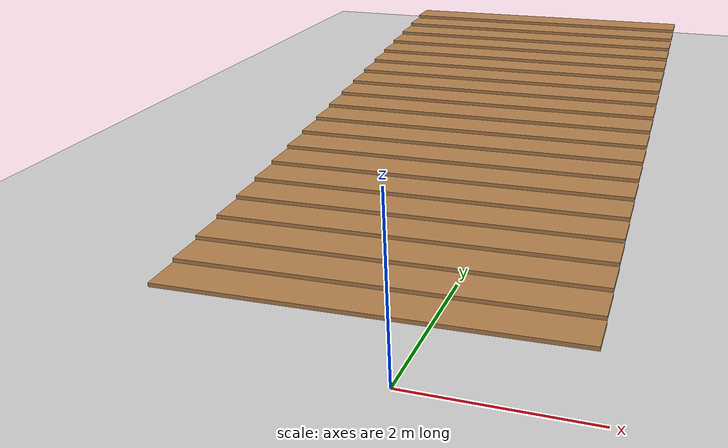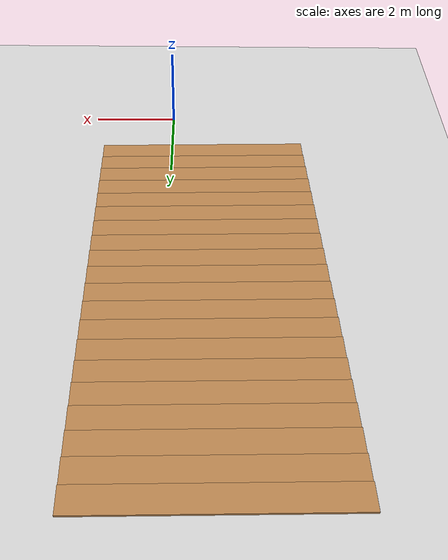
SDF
<sdf version="1.7">
 <world name="default">
  <light name="sun" type="directional">
   <pose>0 0 10 0 -0 0</pose>
   <diffuse>0.8 0.8 0.8 1</diffuse>
   <specular>0.2 0.2 0.2 1</specular>
   <attenuation>
    <range>1000</range>
    <constant>0.9</constant>
    <linear>0.01</linear>
    <quadratic>0.001</quadratic>
   </attenuation>
   <direction>-0.5 0.1 -0.9</direction>
   <spot><inner_angle>0</inner_angle><outer_angle>0</outer_angle><falloff>0</falloff></spot>
  </light>
  <model name="ground_plane">
   <static>1</static>
   <link name="link">
    <collision name="collision">
     <geometry><plane><normal>0 0 1</normal><size>100 100</size></plane></geometry>
     <surface>
      <contact><collide_bitmask>65535</collide_bitmask></contact>
      <friction><ode><mu>100</mu><mu2>50</mu2></ode></friction>
     </surface>
    </collision>
    <visual name="visual">
     <cast_shadows>0</cast_shadows>
     <geometry><plane><normal>0 0 1</normal><size>100 100</size></plane></geometry>
     <material>
      <script><uri>file://media/materials/scripts/gazebo.material</uri><name>Gazebo/Grey</name></script>
     </material>
    </visual>
   </link>
  </model>
  <gravity>0 0 -9.8</gravity>
  <magnetic_field>6e-06 2.3e-05 -4.2e-05</magnetic_field>
  <atmosphere type="adiabatic"/>
  <physics type="ode">
   <max_step_size>0.001</max_step_size>
   <real_time_factor>1</real_time_factor>
   <real_time_update_rate>1000</real_time_update_rate>
  </physics>
  <scene><ambient>0.4 0.4 0.4 1</ambient><background>0.7 0.7 0.7 1</background><shadows>1</shadows></scene>
  <spherical_coordinates>
   <surface_model>EARTH_WGS84</surface_model>
   <latitude_deg>0</latitude_deg>
   <longitude_deg>0</longitude_deg>
   <elevation>0</elevation>
   <heading_deg>0</heading_deg>
  </spherical_coordinates>
  <model name="Untitled">
   <pose>-0.886192 6.06718 0 0 0 -3.11701</pose>
   <link name="Stairs_4">
    <visual name="Stairs_4_Visual_0">
     <pose>0 4.75 0.025 0 -0 0</pose>
     <geometry><box><size>5 0.5 0.05</size></box></geometry>
     <material>
      <script><uri>file://media/materials/scripts/gazebo.material</uri><name>Gazebo/Wood</name></script>
      <ambient>1 1 1 1</ambient>
     </material>
     <meta><layer>0</layer></meta>
    </visual>
    <collision name="Stairs_4_Collision_0">
     <geometry><box><size>5 0.5 0.05</size></box></geometry>
     <pose>0 4.75 0.025 0 -0 0</pose>
    </collision>
    <visual name="Stairs_4_Visual_1">
     <pose>0 4.25 0.075 0 -0 0</pose>
     <geometry><box><size>5 0.5 0.05</size></box></geometry>
     <material>
      <script><uri>file://media/materials/scripts/gazebo.material</uri><name>Gazebo/Wood</name></script>
      <ambient>1 1 1 1</ambient>
     </material>
     <meta><layer>0</layer></meta>
    </visual>
    <collision name="Stairs_4_Collision_1">
     <geometry><box><size>5 0.5 0.05</size></box></geometry>
     <pose>0 4.25 0.075 0 -0 0</pose>
    </collision>
    <visual name="Stairs_4_Visual_2">
     <pose>0 3.75 0.125 0 -0 0</pose>
     <geometry><box><size>5 0.5 0.05</size></box></geometry>
     <material>
      <script><uri>file://media/materials/scripts/gazebo.material</uri><name>Gazebo/Wood</name></script>
      <ambient>1 1 1 1</ambient>
     </material>
     <meta><layer>0</layer></meta>
    </visual>
    <collision name="Stairs_4_Collision_2">
     <geometry><box><size>5 0.5 0.05</size></box></geometry>
     <pose>0 3.75 0.125 0 -0 0</pose>
    </collision>
    <visual name="Stairs_4_Visual_3">
     <pose>0 3.25 0.175 0 -0 0</pose>
     <geometry><box><size>5 0.5 0.05</size></box></geometry>
     <material>
      <script><uri>file://media/materials/scripts/gazebo.material</uri><name>Gazebo/Wood</name></script>
      <ambient>1 1 1 1</ambient>
     </material>
     <meta><layer>0</layer></meta>
    </visual>
    <collision name="Stairs_4_Collision_3">
     <geometry><box><size>5 0.5 0.05</size></box></geometry>
     <pose>0 3.25 0.175 0 -0 0</pose>
    </collision>
    <visual name="Stairs_4_Visual_4">
     <pose>0 2.75 0.225 0 -0 0</pose>
     <geometry><box><size>5 0.5 0.05</size></box></geometry>
     <material>
      <script><uri>file://media/materials/scripts/gazebo.material</uri><name>Gazebo/Wood</name></script>
      <ambient>1 1 1 1</ambient>
     </material>
     <meta><layer>0</layer></meta>
    </visual>
    <collision name="Stairs_4_Collision_4">
     <geometry><box><size>5 0.5 0.05</size></box></geometry>
     <pose>0 2.75 0.225 0 -0 0</pose>
    </collision>
    <visual name="Stairs_4_Visual_5">
     <pose>0 2.25 0.275 0 -0 0</pose>
     <geometry><box><size>5 0.5 0.05</size></box></geometry>
     <material>
      <script><uri>file://media/materials/scripts/gazebo.material</uri><name>Gazebo/Wood</name></script>
      <ambient>1 1 1 1</ambient>
     </material>
     <meta><layer>0</layer></meta>
    </visual>
    <collision name="Stairs_4_Collision_5">
     <geometry><box><size>5 0.5 0.05</size></box></geometry>
     <pose>0 2.25 0.275 0 -0 0</pose>
    </collision>
    <visual name="Stairs_4_Visual_6">
     <pose>0 1.75 0.325 0 -0 0</pose>
     <geometry><box><size>5 0.5 0.05</size></box></geometry>
     <material>
      <script><uri>file://media/materials/scripts/gazebo.material</uri><name>Gazebo/Wood</name></script>
      <ambient>1 1 1 1</ambient>
     </material>
     <meta><layer>0</layer></meta>
    </visual>
    <collision name="Stairs_4_Collision_6">
     <geometry><box><size>5 0.5 0.05</size></box></geometry>
     <pose>0 1.75 0.325 0 -0 0</pose>
    </collision>
    <visual name="Stairs_4_Visual_7">
     <pose>0 1.25 0.375 0 -0 0</pose>
     <geometry><box><size>5 0.5 0.05</size></box></geometry>
     <material>
      <script><uri>file://media/materials/scripts/gazebo.material</uri><name>Gazebo/Wood</name></script>
      <ambient>1 1 1 1</ambient>
     </material>
     <meta><layer>0</layer></meta>
    </visual>
    <collision name="Stairs_4_Collision_7">
     <geometry><box><size>5 0.5 0.05</size></box></geometry>
     <pose>0 1.25 0.375 0 -0 0</pose>
    </collision>
    <visual name="Stairs_4_Visual_8">
     <pose>0 0.75 0.425 0 -0 0</pose>
     <geometry><box><size>5 0.5 0.05</size></box></geometry>
     <material>
      <script><uri>file://media/materials/scripts/gazebo.material</uri><name>Gazebo/Wood</name></script>
      <ambient>1 1 1 1</ambient>
     </material>
     <meta><layer>0</layer></meta>
    </visual>
    <collision name="Stairs_4_Collision_8">
     <geometry><box><size>5 0.5 0.05</size></box></geometry>
     <pose>0 0.75 0.425 0 -0 0</pose>
    </collision>
    <visual name="Stairs_4_Visual_9">
     <pose>0 0.25 0.475 0 -0 0</pose>
     <geometry><box><size>5 0.5 0.05</size></box></geometry>
     <material>
      <script><uri>file://media/materials/scripts/gazebo.material</uri><name>Gazebo/Wood</name></script>
      <ambient>1 1 1 1</ambient>
     </material>
     <meta><layer>0</layer></meta>
    </visual>
    <collision name="Stairs_4_Collision_9">
     <geometry><box><size>5 0.5 0.05</size></box></geometry>
     <pose>0 0.25 0.475 0 -0 0</pose>
    </collision>
    <visual name="Stairs_4_Visual_10">
     <pose>0 -0.25 0.525 0 -0 0</pose>
     <geometry><box><size>5 0.5 0.05</size></box></geometry>
     <material>
      <script><uri>file://media/materials/scripts/gazebo.material</uri><name>Gazebo/Wood</name></script>
      <ambient>1 1 1 1</ambient>
     </material>
     <meta><layer>0</layer></meta>
    </visual>
    <collision name="Stairs_4_Collision_10">
     <geometry><box><size>5 0.5 0.05</size></box></geometry>
     <pose>0 -0.25 0.525 0 -0 0</pose>
    </collision>
    <visual name="Stairs_4_Visual_11">
     <pose>0 -0.75 0.575 0 -0 0</pose>
     <geometry><box><size>5 0.5 0.05</size></box></geometry>
     <material>
      <script><uri>file://media/materials/scripts/gazebo.material</uri><name>Gazebo/Wood</name></script>
      <ambient>1 1 1 1</ambient>
     </material>
     <meta><layer>0</layer></meta>
    </visual>
    <collision name="Stairs_4_Collision_11">
     <geometry><box><size>5 0.5 0.05</size></box></geometry>
     <pose>0 -0.75 0.575 0 -0 0</pose>
    </collision>
    <visual name="Stairs_4_Visual_12">
     <pose>0 -1.25 0.625 0 -0 0</pose>
     <geometry><box><size>5 0.5 0.05</size></box></geometry>
     <material>
      <script><uri>file://media/materials/scripts/gazebo.material</uri><name>Gazebo/Wood</name></script>
      <ambient>1 1 1 1</ambient>
     </material>
     <meta><layer>0</layer></meta>
    </visual>
    <collision name="Stairs_4_Collision_12">
     <geometry><box><size>5 0.5 0.05</size></box></geometry>
     <pose>0 -1.25 0.625 0 -0 0</pose>
    </collision>
    <visual name="Stairs_4_Visual_13">
     <pose>0 -1.75 0.675 0 -0 0</pose>
     <geometry><box><size>5 0.5 0.05</size></box></geometry>
     <material>
      <script><uri>file://media/materials/scripts/gazebo.material</uri><name>Gazebo/Wood</name></script>
      <ambient>1 1 1 1</ambient>
     </material>
     <meta><layer>0</layer></meta>
    </visual>
    <collision name="Stairs_4_Collision_13">
     <geometry><box><size>5 0.5 0.05</size></box></geometry>
     <pose>0 -1.75 0.675 0 -0 0</pose>
    </collision>
    <visual name="Stairs_4_Visual_14">
     <pose>0 -2.25 0.725 0 -0 0</pose>
     <geometry><box><size>5 0.5 0.05</size></box></geometry>
     <material>
      <script><uri>file://media/materials/scripts/gazebo.material</uri><name>Gazebo/Wood</name></script>
      <ambient>1 1 1 1</ambient>
     </material>
     <meta><layer>0</layer></meta>
    </visual>
    <collision name="Stairs_4_Collision_14">
     <geometry><box><size>5 0.5 0.05</size></box></geometry>
     <pose>0 -2.25 0.725 0 -0 0</pose>
    </collision>
    <visual name="Stairs_4_Visual_15">
     <pose>0 -2.75 0.775 0 -0 0</pose>
     <geometry><box><size>5 0.5 0.05</size></box></geometry>
     <material>
      <script><uri>file://media/materials/scripts/gazebo.material</uri><name>Gazebo/Wood</name></script>
      <ambient>1 1 1 1</ambient>
     </material>
     <meta><layer>0</layer></meta>
    </visual>
    <collision name="Stairs_4_Collision_15">
     <geometry><box><size>5 0.5 0.05</size></box></geometry>
     <pose>0 -2.75 0.775 0 -0 0</pose>
    </collision>
    <visual name="Stairs_4_Visual_16">
     <pose>0 -3.25 0.825 0 -0 0</pose>
     <geometry><box><size>5 0.5 0.05</size></box></geometry>
     <material>
      <script><uri>file://media/materials/scripts/gazebo.material</uri><name>Gazebo/Wood</name></script>
      <ambient>1 1 1 1</ambient>
     </material>
     <meta><layer>0</layer></meta>
    </visual>
    <collision name="Stairs_4_Collision_16">
     <geometry><box><size>5 0.5 0.05</size></box></geometry>
     <pose>0 -3.25 0.825 0 -0 0</pose>
    </collision>
    <visual name="Stairs_4_Visual_17">
     <pose>0 -3.75 0.875 0 -0 0</pose>
     <geometry><box><size>5 0.5 0.05</size></box></geometry>
     <material>
      <script><uri>file://media/materials/scripts/gazebo.material</uri><name>Gazebo/Wood</name></script>
      <ambient>1 1 1 1</ambient>
     </material>
     <meta><layer>0</layer></meta>
    </visual>
    <collision name="Stairs_4_Collision_17">
     <geometry><box><size>5 0.5 0.05</size></box></geometry>
     <pose>0 -3.75 0.875 0 -0 0</pose>
    </collision>
    <visual name="Stairs_4_Visual_18">
     <pose>0 -4.25 0.925 0 -0 0</pose>
     <geometry><box><size>5 0.5 0.05</size></box></geometry>
     <material>
      <script><uri>file://media/materials/scripts/gazebo.material</uri><name>Gazebo/Wood</name></script>
      <ambient>1 1 1 1</ambient>
     </material>
     <meta><layer>0</layer></meta>
    </visual>
    <collision name="Stairs_4_Collision_18">
     <geometry><box><size>5 0.5 0.05</size></box></geometry>
     <pose>0 -4.25 0.925 0 -0 0</pose>
    </collision>
    <visual name="Stairs_4_Visual_19">
     <pose>0 -4.75 0.975 0 -0 0</pose>
     <geometry><box><size>5 0.5 0.05</size></box></geometry>
     <material>
      <script><uri>file://media/materials/scripts/gazebo.material</uri><name>Gazebo/Wood</name></script>
      <ambient>1 1 1 1</ambient>
     </material>
     <meta><layer>0</layer></meta>
    </visual>
    <collision name="Stairs_4_Collision_19">
     <geometry><box><size>5 0.5 0.05</size></box></geometry>
     <pose>0 -4.75 0.975 0 -0 0</pose>
    </collision>
   </link>
   <static>1</static>
  </model>
 </world>
</sdf>
